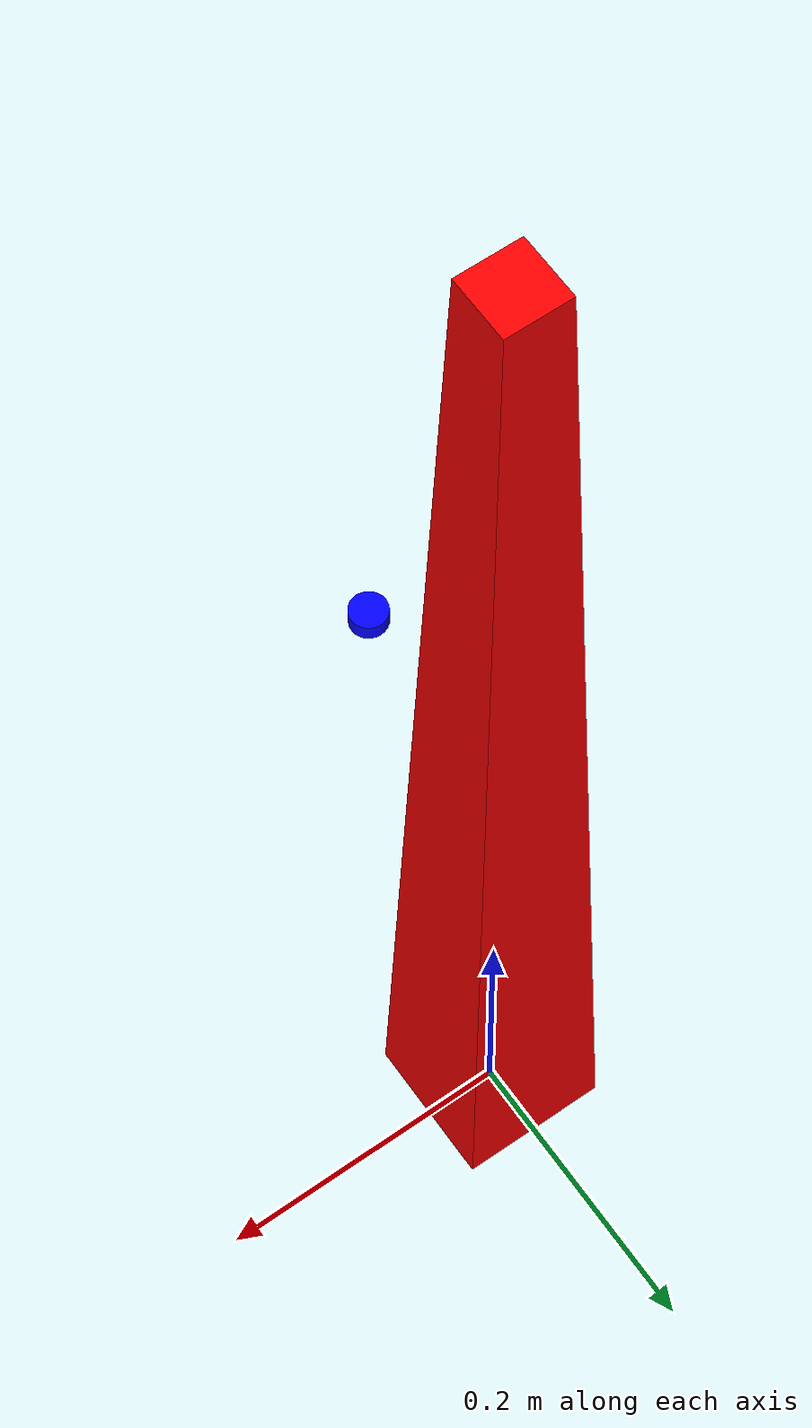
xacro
<?xml version="1.0"?>

<robot name="cam_bot" xmlns:xacro="http://ros.org/wiki/xacro">

<link name="base_link">
      <inertial>
        <mass value="1.584994"/>
        <origin xyz="0.0 0.0 0.0"/>
        <inertia
          ixx="0.01042" ixy="0.001177" ixz="-0.0008871"
          iyy="0.01045" iyz="0.0002226"
          izz="0.01817"/>
      </inertial>
      <visual>
        <geometry>
          <mesh filename="package://camera_sim/mesh/BASE.stl" scale="3 3 3"/>
        </geometry>
        <material name="RED">
          <color rgba="1.0 0.0 0.0 1.0"/>
        </material>
      </visual>
      <collision>
        <geometry>
          <mesh filename="package://camera_sim/mesh/BASE.stl" scale="3 3 3" />
        </geometry>
      </collision>
</link>

<joint name="camera_joint" type="fixed">
      <parent link="base_link" />
      <child link = "camera_link" />
      <origin xyz="0.08 0 0.7" rpy="0.0 0.0 0.0" />
      <!-- use this when image is to much blocked -->
      <axis xyz="0 0 1" />
</joint>

<link name="camera_link">
      <inertial>
        <mass value="0.2"/>
        <origin xyz="0.0 0.0 0.0"/>
        <inertia
          ixx="0.01" ixy="0.001" ixz="0"
          iyy="0.01" iyz="0.0"
          izz="0.01"/>
      </inertial>
      <visual>
        <geometry>
        <cylinder length="0.01" radius="0.01"/>
        </geometry>
        <material name="Blue">
          <color rgba="0 0 1.0 1.0"/>
        </material>
      </visual>
      <collision>
        <geometry>
        <cylinder length="0.01" radius="0.01"/>
        </geometry>
      </collision>
</link>

<joint name="camera_depth_joint" type="fixed">
  <origin xyz="0 0 0" rpy="-1.57 0 -1.57"/>
  <parent link="camera_link"/>
  <child link="camera_depth_frame"/>
</joint>

  <link name="camera_depth_frame">
</link>

<gazebo reference="camera_link">
    <sensor type="depth" name="intelrealsense2">
    <update_rate>1</update_rate>
      <always_on>1</always_on>
      <visualize>true</visualize>
      <camera>
        <horizontal_fov>1.047</horizontal_fov>
        <image>
          <width>640</width>
          <height>480</height>
          <format>R8G8B8</format>
        </image>
        <depth_camera>

        </depth_camera>
        <clip>
          <near>0.1</near>
          <far>100</far>
        </clip>
      </camera>
      <plugin name="intelrealsense" filename="libgazebo_ros_openni_kinect.so">
        <alwaysOn>true</alwaysOn>
        <updateRate>1</updateRate>
        <cameraName>camera_intelrealsense</cameraName>
        <frameName>camera_depth_frame</frameName>
        <imageTopicName>/camera/color/image_raw</imageTopicName>
        <depthImageTopicName>/camera/depth/image_raw</depthImageTopicName>
        <pointCloudTopicName>depth/point_cloud</pointCloudTopicName>
        <cameraInfoTopicName>/camera/color/camera_info</cameraInfoTopicName>
        <depthImageCameraInfoTopicName>/camera/depth/camera_info</depthImageCameraInfoTopicName>
         <pointCloudCutoff>0.2</pointCloudCutoff>
         <pointCloudCutoffMax>10.0</pointCloudCutoffMax>
        <hackBaseline>0.07</hackBaseline>
        <distortionK1>0.0</distortionK1>
        <distortionK2>0.0</distortionK2>
        <distortionK3>0.0</distortionK3>
        <distortionT1>0.0</distortionT1>
        <distortionT2>0.0</distortionT2>
        <CxPrime>0.0</CxPrime>
        <Cx>0.0</Cx>
        <Cy>0.0</Cy>
        <focalLength>0.0</focalLength>
      </plugin>
    </sensor>
  </gazebo>

</robot>
